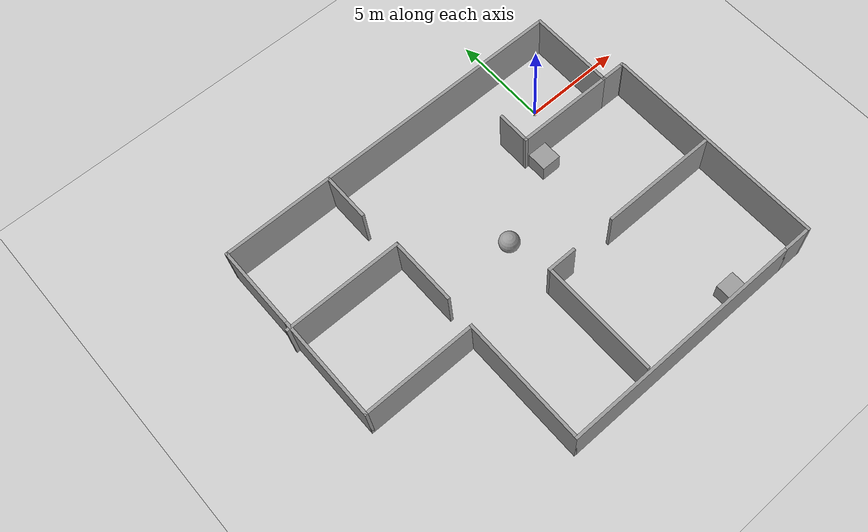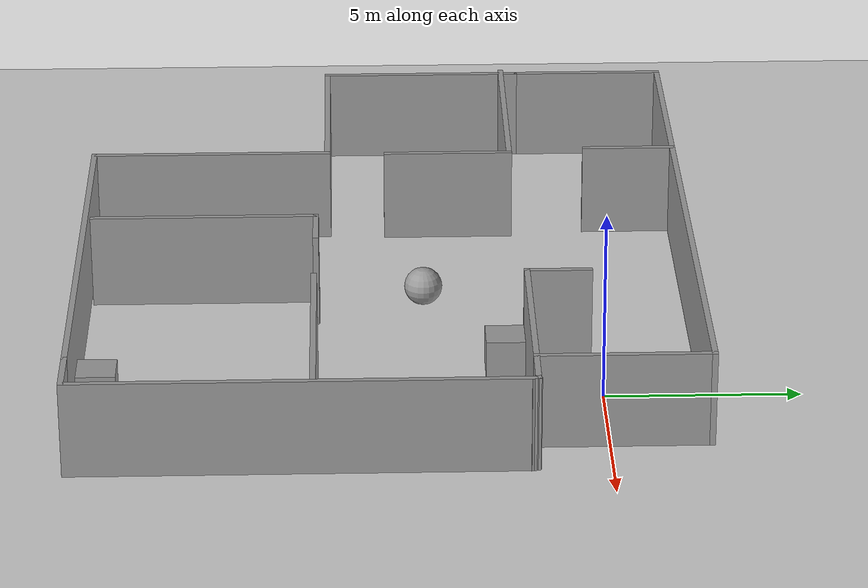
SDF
<sdf version="1.7">
 <world name="default">
  <light name="sun" type="directional">
   <pose>0 0 10 0 -0 0</pose>
   <diffuse>0.8 0.8 0.8 1</diffuse>
   <specular>0.2 0.2 0.2 1</specular>
   <attenuation>
    <range>1000</range>
    <constant>0.9</constant>
    <linear>0.01</linear>
    <quadratic>0.001</quadratic>
   </attenuation>
   <direction>-0.5 0.1 -0.9</direction>
   <spot><inner_angle>0</inner_angle><outer_angle>0</outer_angle><falloff>0</falloff></spot>
  </light>
  <model name="ground_plane">
   <static>1</static>
   <link name="link">
    <collision name="collision">
     <geometry><plane><normal>0 0 1</normal><size>100 100</size></plane></geometry>
     <surface><friction><ode><mu>100</mu><mu2>50</mu2></ode></friction></surface>
    </collision>
    <visual name="visual">
     <cast_shadows>0</cast_shadows>
     <geometry><plane><normal>0 0 1</normal><size>100 100</size></plane></geometry>
     <material>
      <script><uri>file://media/materials/scripts/gazebo.material</uri><name>Gazebo/Grey</name></script>
     </material>
    </visual>
   </link>
  </model>
  <gravity>0 0 -9.8</gravity>
  <magnetic_field>6e-06 2.3e-05 -4.2e-05</magnetic_field>
  <atmosphere type="adiabatic"/>
  <physics type="ode">
   <max_step_size>0.001</max_step_size>
   <real_time_factor>1</real_time_factor>
   <real_time_update_rate>1000</real_time_update_rate>
  </physics>
  <scene><ambient>0.4 0.4 0.4 1</ambient><background>0.7 0.7 0.7 1</background><shadows>1</shadows></scene>
  <audio><device>default</device></audio>
  <spherical_coordinates>
   <surface_model>EARTH_WGS84</surface_model>
   <latitude_deg>0</latitude_deg>
   <longitude_deg>0</longitude_deg>
   <elevation>0</elevation>
   <heading_deg>0</heading_deg>
  </spherical_coordinates>
  <model name="room">
   <pose>-5.93375 -5.39 0 0 -0 0</pose>
   <link name="Wall_0">
    <collision name="Wall_0_Collision">
     <geometry><box><size>4.5 0.15 2.5</size></box></geometry>
     <pose>0 0 1.25 0 -0 0</pose>
    </collision>
    <visual name="Wall_0_Visual">
     <pose>0 0 1.25 0 -0 0</pose>
     <geometry><box><size>4.5 0.15 2.5</size></box></geometry>
     <material>
      <script><uri>file://media/materials/scripts/gazebo.material</uri><name>Gazebo/Grey</name></script>
      <ambient>1 1 1 1</ambient>
     </material>
     <meta><layer>0</layer></meta>
    </visual>
    <pose>8.52375 5.725 0 0 -0 1.5708</pose>
   </link>
   <link name="Wall_1">
    <collision name="Wall_1_Collision">
     <geometry><box><size>18.25 0.15 2.5</size></box></geometry>
     <pose>0 0 1.25 0 -0 0</pose>
    </collision>
    <visual name="Wall_1_Visual">
     <pose>0 0 1.25 0 -0 0</pose>
     <geometry><box><size>18.25 0.15 2.5</size></box></geometry>
     <material>
      <script><uri>file://media/materials/scripts/gazebo.material</uri><name>Gazebo/Grey</name></script>
      <ambient>1 1 1 1</ambient>
     </material>
     <meta><layer>0</layer></meta>
    </visual>
    <pose>-0.526248 7.9 0 0 -0 3.14159</pose>
   </link>
   <link name="Wall_10">
    <collision name="Wall_10_Collision">
     <geometry><box><size>0.25 0.15 2.5</size></box></geometry>
     <pose>0 0 1.25 0 -0 0</pose>
    </collision>
    <visual name="Wall_10_Visual">
     <pose>0 0 1.25 0 -0 0</pose>
     <geometry><box><size>0.25 0.15 2.5</size></box></geometry>
     <material>
      <script><uri>file://media/materials/scripts/gazebo.material</uri><name>Gazebo/Grey</name></script>
      <ambient>1 1 1 1</ambient>
     </material>
     <meta><layer>0</layer></meta>
    </visual>
    <pose>9.71081 3.4983 0 0 -0 1.8326</pose>
   </link>
   <link name="Wall_11">
    <collision name="Wall_11_Collision">
     <geometry><box><size>1.32412 0.15 2.5</size></box></geometry>
     <pose>0 0 1.25 0 -0 0</pose>
    </collision>
    <visual name="Wall_11_Visual">
     <pose>0 0 1.25 0 -0 0</pose>
     <geometry><box><size>1.32412 0.15 2.5</size></box></geometry>
     <material>
      <script><uri>file://media/materials/scripts/gazebo.material</uri><name>Gazebo/Grey</name></script>
      <ambient>1 1 1 1</ambient>
     </material>
     <meta><layer>0</layer></meta>
    </visual>
    <pose>9.11081 3.5483 0 0 -0 3.13869</pose>
   </link>
   <link name="Wall_13">
    <collision name="Wall_13_Collision">
     <geometry><box><size>5 0.15 2.5</size></box></geometry>
     <pose>0 0 1.25 0 -0 0</pose>
    </collision>
    <visual name="Wall_13_Visual">
     <pose>0 0 1.25 0 -0 0</pose>
     <geometry><box><size>5 0.15 2.5</size></box></geometry>
     <material>
      <script><uri>file://media/materials/scripts/gazebo.material</uri><name>Gazebo/Grey</name></script>
      <ambient>1 1 1 1</ambient>
     </material>
     <meta><layer>0</layer></meta>
    </visual>
    <pose>6.09875 3.55 0 0 -0 3.14159</pose>
   </link>
   <link name="Wall_14">
    <collision name="Wall_14_Collision">
     <geometry><box><size>1.75 0.15 2.5</size></box></geometry>
     <pose>0 0 1.25 0 -0 0</pose>
    </collision>
    <visual name="Wall_14_Visual">
     <pose>0 0 1.25 0 -0 0</pose>
     <geometry><box><size>1.75 0.15 2.5</size></box></geometry>
     <material>
      <script><uri>file://media/materials/scripts/gazebo.material</uri><name>Gazebo/Grey</name></script>
      <ambient>1 1 1 1</ambient>
     </material>
     <meta><layer>0</layer></meta>
    </visual>
    <pose>3.67375 4.35 0 0 -0 1.5708</pose>
   </link>
   <link name="Wall_16">
    <collision name="Wall_16_Collision">
     <geometry><box><size>6 0.15 2.5</size></box></geometry>
     <pose>0 0 1.25 0 -0 0</pose>
    </collision>
    <visual name="Wall_16_Visual">
     <pose>0 0 1.25 0 -0 0</pose>
     <geometry><box><size>6 0.15 2.5</size></box></geometry>
     <material>
      <script><uri>file://media/materials/scripts/gazebo.material</uri><name>Gazebo/Grey</name></script>
      <ambient>1 1 1 1</ambient>
     </material>
     <meta><layer>0</layer></meta>
    </visual>
    <pose>-6.81561 3.41448 0 0 -0 0</pose>
   </link>
   <link name="Wall_17">
    <collision name="Wall_17_Collision">
     <geometry><box><size>3.5 0.15 2.5</size></box></geometry>
     <pose>0 0 1.25 0 -0 0</pose>
    </collision>
    <visual name="Wall_17_Visual">
     <pose>0 0 1.25 0 -0 0</pose>
     <geometry><box><size>3.5 0.15 2.5</size></box></geometry>
     <material>
      <script><uri>file://media/materials/scripts/gazebo.material</uri><name>Gazebo/Grey</name></script>
      <ambient>1 1 1 1</ambient>
     </material>
     <meta><layer>0</layer></meta>
    </visual>
    <pose>-3.89061 1.73948 0 0 -0 -1.5708</pose>
   </link>
   <link name="Wall_19">
    <collision name="Wall_19_Collision">
     <geometry><box><size>2.5 0.15 2.5</size></box></geometry>
     <pose>0 0 1.25 0 -0 0</pose>
    </collision>
    <visual name="Wall_19_Visual">
     <pose>0 0 1.25 0 -0 0</pose>
     <geometry><box><size>2.5 0.15 2.5</size></box></geometry>
     <material>
      <script><uri>file://media/materials/scripts/gazebo.material</uri><name>Gazebo/Grey</name></script>
      <ambient>1 1 1 1</ambient>
     </material>
     <meta><layer>0</layer></meta>
    </visual>
    <pose>-4.11728 6.68959 0 0 -0 -1.5708</pose>
   </link>
   <link name="Wall_2">
    <collision name="Wall_2_Collision">
     <geometry><box><size>4.25 0.15 2.5</size></box></geometry>
     <pose>0 0 1.25 0 -0 0</pose>
    </collision>
    <visual name="Wall_2_Visual">
     <pose>0 0 1.25 0 -0 0</pose>
     <geometry><box><size>4.25 0.15 2.5</size></box></geometry>
     <material>
      <script><uri>file://media/materials/scripts/gazebo.material</uri><name>Gazebo/Grey</name></script>
      <ambient>1 1 1 1</ambient>
     </material>
     <meta><layer>0</layer></meta>
    </visual>
    <pose>-9.57625 5.85 0 0 -0 -1.5708</pose>
   </link>
   <link name="Wall_22">
    <collision name="Wall_22_Collision">
     <geometry><box><size>6 0.15 2.5</size></box></geometry>
     <pose>0 0 1.25 0 -0 0</pose>
    </collision>
    <visual name="Wall_22_Visual">
     <pose>0 0 1.25 0 -0 0</pose>
     <geometry><box><size>6 0.15 2.5</size></box></geometry>
     <material>
      <script><uri>file://media/materials/scripts/gazebo.material</uri><name>Gazebo/Grey</name></script>
      <ambient>1 1 1 1</ambient>
     </material>
     <meta><layer>0</layer></meta>
    </visual>
    <pose>0.166247 -4.76975 0 0 -0 -1.5708</pose>
   </link>
   <link name="Wall_24">
    <collision name="Wall_24_Collision">
     <geometry><box><size>1.5 0.15 2.5</size></box></geometry>
     <pose>0 0 1.25 0 -0 0</pose>
    </collision>
    <visual name="Wall_24_Visual">
     <pose>0 0 1.25 0 -0 0</pose>
     <geometry><box><size>1.5 0.15 2.5</size></box></geometry>
     <material>
      <script><uri>file://media/materials/scripts/gazebo.material</uri><name>Gazebo/Grey</name></script>
      <ambient>1 1 1 1</ambient>
     </material>
     <meta><layer>0</layer></meta>
    </visual>
    <pose>0.841247 -1.84475 0 0 -0 0</pose>
   </link>
   <link name="Wall_27">
    <collision name="Wall_27_Collision">
     <geometry><box><size>6 0.15 2.5</size></box></geometry>
     <pose>0 0 1.25 0 -0 0</pose>
    </collision>
    <visual name="Wall_27_Visual">
     <pose>0 0 1.25 0 -0 0</pose>
     <geometry><box><size>6 0.15 2.5</size></box></geometry>
     <material>
      <script><uri>file://media/materials/scripts/gazebo.material</uri><name>Gazebo/Grey</name></script>
      <ambient>1 1 1 1</ambient>
     </material>
     <meta><layer>0</layer></meta>
    </visual>
    <pose>6.7228 -1.87766 0 0 -0 3.14159</pose>
   </link>
   <link name="Wall_4">
    <collision name="Wall_4_Collision">
     <geometry><box><size>5.5 0.15 2.5</size></box></geometry>
     <pose>0 0 1.25 0 -0 0</pose>
    </collision>
    <visual name="Wall_4_Visual">
     <pose>0 0 1.25 0 -0 0</pose>
     <geometry><box><size>5.5 0.15 2.5</size></box></geometry>
     <material>
      <script><uri>file://media/materials/scripts/gazebo.material</uri><name>Gazebo/Grey</name></script>
      <ambient>1 1 1 1</ambient>
     </material>
     <meta><layer>0</layer></meta>
    </visual>
    <pose>-9.57625 1.125 0 0 -0 -1.5708</pose>
   </link>
   <link name="Wall_5">
    <collision name="Wall_5_Collision">
     <geometry><box><size>5.75 0.15 2.5</size></box></geometry>
     <pose>0 0 1.25 0 -0 0</pose>
    </collision>
    <visual name="Wall_5_Visual">
     <pose>0 0 1.25 0 -0 0</pose>
     <geometry><box><size>5.75 0.15 2.5</size></box></geometry>
     <material>
      <script><uri>file://media/materials/scripts/gazebo.material</uri><name>Gazebo/Grey</name></script>
      <ambient>1 1 1 1</ambient>
     </material>
     <meta><layer>0</layer></meta>
    </visual>
    <pose>-6.77625 -1.55 0 0 -0 0</pose>
   </link>
   <link name="Wall_6">
    <collision name="Wall_6_Collision">
     <geometry><box><size>6.5 0.15 2.5</size></box></geometry>
     <pose>0 0 1.25 0 -0 0</pose>
    </collision>
    <visual name="Wall_6_Visual">
     <pose>0 0 1.25 0 -0 0</pose>
     <geometry><box><size>6.5 0.15 2.5</size></box></geometry>
     <material>
      <script><uri>file://media/materials/scripts/gazebo.material</uri><name>Gazebo/Grey</name></script>
      <ambient>1 1 1 1</ambient>
     </material>
     <meta><layer>0</layer></meta>
    </visual>
    <pose>-3.97625 -4.725 0 0 -0 -1.5708</pose>
   </link>
   <link name="Wall_7">
    <collision name="Wall_7_Collision">
     <geometry><box><size>12.5 0.15 2.5</size></box></geometry>
     <pose>0 0 1.25 0 -0 0</pose>
    </collision>
    <visual name="Wall_7_Visual">
     <pose>0 0 1.25 0 -0 0</pose>
     <geometry><box><size>12.5 0.15 2.5</size></box></geometry>
     <material>
      <script><uri>file://media/materials/scripts/gazebo.material</uri><name>Gazebo/Grey</name></script>
      <ambient>1 1 1 1</ambient>
     </material>
     <meta><layer>0</layer></meta>
    </visual>
    <pose>2.19875 -7.9 0 0 -0 0</pose>
   </link>
   <link name="Wall_8">
    <collision name="Wall_8_Collision">
     <geometry><box><size>1.5 0.15 2.5</size></box></geometry>
     <pose>0 0 1.25 0 -0 0</pose>
    </collision>
    <visual name="Wall_8_Visual">
     <pose>0 0 1.25 0 -0 0</pose>
     <geometry><box><size>1.5 0.15 2.5</size></box></geometry>
     <material>
      <script><uri>file://media/materials/scripts/gazebo.material</uri><name>Gazebo/Grey</name></script>
      <ambient>1 1 1 1</ambient>
     </material>
     <meta><layer>0</layer></meta>
    </visual>
    <pose>9.04875 -7.9 0 0 -0 0</pose>
   </link>
   <link name="Wall_9">
    <collision name="Wall_9_Collision">
     <geometry><box><size>11.5 0.15 2.5</size></box></geometry>
     <pose>0 0 1.25 0 -0 0</pose>
    </collision>
    <visual name="Wall_9_Visual">
     <pose>0 0 1.25 0 -0 0</pose>
     <geometry><box><size>11.5 0.15 2.5</size></box></geometry>
     <material>
      <script><uri>file://media/materials/scripts/gazebo.material</uri><name>Gazebo/Grey</name></script>
      <ambient>1 1 1 1</ambient>
     </material>
     <meta><layer>0</layer></meta>
    </visual>
    <pose>9.72375 -2.225 0 0 -0 1.5708</pose>
   </link>
   <static>1</static>
  </model>
  <model name="fishbot">
   <link name="base_footprint">
    <inertial>
     <pose>0.000926 0 0.095565 0 -0 0</pose>
     <mass>1.08</mass>
     <inertia>
      <ixx>0.00465223</ixx>
      <ixy>0</ixy>
      <ixz>-7.04352e-05</ixz>
      <iyy>0.0048713</iyy>
      <iyz>0</iyz>
      <izz>0.00524496</izz>
     </inertia>
    </inertial>
    <collision name="base_footprint_fixed_joint_lump__base_link_collision">
     <pose>0 0 0.091 0 -0 0</pose>
     <geometry><cylinder><length>0.12</length><radius>0.12</radius></cylinder></geometry>
    </collision>
    <collision name="base_footprint_fixed_joint_lump__back_caster_link_collision_1">
     <pose>-0.08 0 0.015 0 -0 0</pose>
     <geometry><sphere><radius>0.016</radius></sphere></geometry>
     <surface>
      <contact><ode><kp>1e+09</kp><kd>1</kd></ode></contact>
      <friction><ode><mu>0</mu><mu2>0</mu2></ode></friction>
     </surface>
    </collision>
    <collision name="base_footprint_fixed_joint_lump__camera_link_collision_2">
     <pose>0.1 0 0.166 0 -0 0</pose>
     <geometry><box><size>0.02 0.1 0.02</size></box></geometry>
    </collision>
    <collision name="base_footprint_fixed_joint_lump__front_caster_link_collision_3">
     <pose>0.08 0 0.015 0 -0 0</pose>
     <geometry><sphere><radius>0.016</radius></sphere></geometry>
     <surface>
      <contact><ode><kp>1e+09</kp><kd>1</kd></ode></contact>
      <friction><ode><mu>0</mu><mu2>0</mu2></ode></friction>
     </surface>
    </collision>
    <collision name="base_footprint_fixed_joint_lump__imu_link_collision_4">
     <pose>0 0 0.111 0 -0 0</pose>
     <geometry><box><size>0.02 0.02 0.02</size></box></geometry>
    </collision>
    <collision name="base_footprint_fixed_joint_lump__laser_cylinder_link_collision_5">
     <pose>0 0 0.191 0 -0 0</pose>
     <geometry><cylinder><length>0.1</length><radius>0.01</radius></cylinder></geometry>
    </collision>
    <collision name="base_footprint_fixed_joint_lump__laser_link_collision_6">
     <pose>0 0 0.241 0 -0 0</pose>
     <geometry><cylinder><length>0.02</length><radius>0.02</radius></cylinder></geometry>
    </collision>
    <visual name="base_footprint_fixed_joint_lump__base_link_visual">
     <pose>0 0 0.091 0 -0 0</pose>
     <geometry><cylinder><length>0.12</length><radius>0.12</radius></cylinder></geometry>
    </visual>
    <visual name="base_footprint_fixed_joint_lump__back_caster_link_visual_1">
     <pose>-0.08 0 0.015 0 -0 0</pose>
     <geometry><sphere><radius>0.016</radius></sphere></geometry>
    </visual>
    <visual name="base_footprint_fixed_joint_lump__camera_link_visual_2">
     <pose>0.1 0 0.166 0 -0 0</pose>
     <geometry><box><size>0.02 0.1 0.02</size></box></geometry>
    </visual>
    <visual name="base_footprint_fixed_joint_lump__front_caster_link_visual_3">
     <pose>0.08 0 0.015 0 -0 0</pose>
     <geometry><sphere><radius>0.016</radius></sphere></geometry>
    </visual>
    <visual name="base_footprint_fixed_joint_lump__imu_link_visual_4">
     <pose>0 0 0.111 0 -0 0</pose>
     <geometry><box><size>0.02 0.02 0.02</size></box></geometry>
    </visual>
    <visual name="base_footprint_fixed_joint_lump__laser_cylinder_link_visual_5">
     <pose>0 0 0.191 0 -0 0</pose>
     <geometry><cylinder><length>0.1</length><radius>0.01</radius></cylinder></geometry>
    </visual>
    <visual name="base_footprint_fixed_joint_lump__laser_link_visual_6">
     <pose>0 0 0.241 0 -0 0</pose>
     <geometry><cylinder><length>0.02</length><radius>0.02</radius></cylinder></geometry>
    </visual>
    <sensor name="camera_sensor" type="depth">
     <plugin name="depth_camera" filename="libgazebo_ros_camera.so">
      <frame_name>camera_optical_link</frame_name>
     </plugin>
     <always_on>1</always_on>
     <update_rate>10</update_rate>
     <camera name="camera">
      <horizontal_fov>1.50098</horizontal_fov>
      <image><width>800</width><height>600</height><format>R8G8B8</format></image>
      <distortion><k1>0</k1><k2>0</k2><k3>0</k3><p1>0</p1><p2>0</p2><center>0.5 0.5</center></distortion>
      <clip><near>0.1</near><far>100</far></clip>
     </camera>
     <pose>0.1 0 0.166 0 -0 0</pose>
    </sensor>
    <sensor name="imu_sensor" type="imu">
     <plugin name="imu_plugin" filename="libgazebo_ros_imu_sensor.so">
      <ros><namespace>/</namespace><remapping>~/out:=imu</remapping></ros>
      <initial_orientation_as_reference>0</initial_orientation_as_reference>
     </plugin>
     <update_rate>100</update_rate>
     <always_on>1</always_on>
     <imu>
      <angular_velocity>
       <x>
        <noise type="gaussian">
         <mean>0</mean>
         <stddev>0.0002</stddev>
         <bias_mean>7.5e-06</bias_mean>
         <bias_stddev>8e-07</bias_stddev>
        </noise>
       </x>
       <y>
        <noise type="gaussian">
         <mean>0</mean>
         <stddev>0.0002</stddev>
         <bias_mean>7.5e-06</bias_mean>
         <bias_stddev>8e-07</bias_stddev>
        </noise>
       </y>
       <z>
        <noise type="gaussian">
         <mean>0</mean>
         <stddev>0.0002</stddev>
         <bias_mean>7.5e-06</bias_mean>
         <bias_stddev>8e-07</bias_stddev>
        </noise>
       </z>
      </angular_velocity>
      <linear_acceleration>
       <x>
        <noise type="gaussian">
         <mean>0</mean>
         <stddev>0.017</stddev>
         <bias_mean>0.1</bias_mean>
         <bias_stddev>0.001</bias_stddev>
        </noise>
       </x>
       <y>
        <noise type="gaussian">
         <mean>0</mean>
         <stddev>0.017</stddev>
         <bias_mean>0.1</bias_mean>
         <bias_stddev>0.001</bias_stddev>
        </noise>
       </y>
       <z>
        <noise type="gaussian">
         <mean>0</mean>
         <stddev>0.017</stddev>
         <bias_mean>0.1</bias_mean>
         <bias_stddev>0.001</bias_stddev>
        </noise>
       </z>
      </linear_acceleration>
     </imu>
     <pose>0 0 0.111 0 -0 0</pose>
    </sensor>
    <sensor name="laserscan" type="ray">
     <plugin name="laserscan" filename="libgazebo_ros_ray_sensor.so">
      <ros><namespace>/</namespace><remapping>~/out:=scan</remapping></ros>
      <output_type>sensor_msgs/LaserScan</output_type>
      <frame_name>laser_link</frame_name>
     </plugin>
     <always_on>1</always_on>
     <visualize>1</visualize>
     <update_rate>5</update_rate>
     <ray>
      <scan>
       <horizontal>
        <samples>360</samples>
        <resolution>1</resolution>
        <min_angle>0</min_angle>
        <max_angle>6.28</max_angle>
       </horizontal>
       <vertical><samples>1</samples><min_angle>0</min_angle><max_angle>0</max_angle></vertical>
      </scan>
      <range><min>0.12</min><max>8</max><resolution>0.015</resolution></range>
      <noise><type>gaussian</type><mean>0</mean><stddev>0.01</stddev></noise>
     </ray>
     <pose>0 0 0.241 0 -0 0</pose>
    </sensor>
   </link>
   <joint name="left_wheel_joint" type="revolute">
    <pose relative_to="base_footprint">0 0.1 0.031 0 -0 0</pose>
    <parent>base_footprint</parent>
    <child>left_wheel_link</child>
    <axis>
     <xyz>0 1 0</xyz>
     <limit><lower>-1e+16</lower><upper>1e+16</upper></limit>
     <dynamics><spring_reference>0</spring_reference><spring_stiffness>0</spring_stiffness></dynamics>
    </axis>
   </joint>
   <link name="left_wheel_link">
    <pose relative_to="left_wheel_joint">0 0 0 0 -0 0</pose>
    <inertial>
     <mass>0.1</mass>
     <inertia>
      <ixx>3.89333e-05</ixx>
      <ixy>0</ixy>
      <ixz>0</ixz>
      <iyy>3.89333e-05</iyy>
      <iyz>0</iyz>
      <izz>5.12e-05</izz>
     </inertia>
    </inertial>
    <collision name="left_wheel_link_collision">
     <pose>0 0 0 1.57079 -0 0</pose>
     <geometry><cylinder><length>0.04</length><radius>0.032</radius></cylinder></geometry>
     <surface>
      <contact><ode><kp>1e+09</kp><kd>1</kd></ode></contact>
      <friction><ode><mu>20</mu><mu2>20</mu2></ode></friction>
     </surface>
    </collision>
    <visual name="left_wheel_link_visual">
     <pose>0 0 0 1.57079 -0 0</pose>
     <geometry><cylinder><length>0.04</length><radius>0.032</radius></cylinder></geometry>
     <material>
      <script><name>Gazebo/Black</name><uri>file://media/materials/scripts/gazebo.material</uri></script>
     </material>
    </visual>
   </link>
   <joint name="right_wheel_joint" type="revolute">
    <pose relative_to="base_footprint">0 -0.1 0.031 0 -0 0</pose>
    <parent>base_footprint</parent>
    <child>right_wheel_link</child>
    <axis>
     <xyz>0 1 0</xyz>
     <limit><lower>-1e+16</lower><upper>1e+16</upper></limit>
     <dynamics><spring_reference>0</spring_reference><spring_stiffness>0</spring_stiffness></dynamics>
    </axis>
   </joint>
   <link name="right_wheel_link">
    <pose relative_to="right_wheel_joint">0 0 0 0 -0 0</pose>
    <inertial>
     <mass>0.1</mass>
     <inertia>
      <ixx>3.89333e-05</ixx>
      <ixy>0</ixy>
      <ixz>0</ixz>
      <iyy>3.89333e-05</iyy>
      <iyz>0</iyz>
      <izz>5.12e-05</izz>
     </inertia>
    </inertial>
    <collision name="right_wheel_link_collision">
     <pose>0 0 0 1.57079 -0 0</pose>
     <geometry><cylinder><length>0.04</length><radius>0.032</radius></cylinder></geometry>
     <surface>
      <contact><ode><kp>1e+09</kp><kd>1</kd></ode></contact>
      <friction><ode><mu>20</mu><mu2>20</mu2></ode></friction>
     </surface>
    </collision>
    <visual name="right_wheel_link_visual">
     <pose>0 0 0 1.57079 -0 0</pose>
     <geometry><cylinder><length>0.04</length><radius>0.032</radius></cylinder></geometry>
     <material>
      <script><name>Gazebo/Black</name><uri>file://media/materials/scripts/gazebo.material</uri></script>
     </material>
    </visual>
   </link>
   <static>0</static>
   <plugin name="gazebo_ros2_control" filename="libgazebo_ros2_control.so">
    <parameters>/home/gerry/chapt7/install/fishbot_description/share/fishbot_description/config/fishbot_ros2_controller.yaml</parameters>
    <ros>
     <remapping>/fishbot_diff_drive_controller/cmd_vel_unstamped:=/cmd_vel</remapping>
     <remapping>/fishbot_diff_drive_controller/odom:=/odom</remapping>
    </ros>
   </plugin>
   <pose>0.000215 -0.002855 0.001 1e-06 -0 -0.000972</pose>
  </model>
  <model name="unit_box">
   <pose>0.033312 -12.715 0.499995 1e-05 -0 0</pose>
   <link name="link">
    <inertial>
     <mass>1</mass>
     <inertia>
      <ixx>0.166667</ixx>
      <ixy>0</ixy>
      <ixz>0</ixz>
      <iyy>0.166667</iyy>
      <iyz>0</iyz>
      <izz>0.166667</izz>
     </inertia>
    </inertial>
    <collision name="collision"><geometry><box><size>1 1 1</size></box></geometry></collision>
    <visual name="visual">
     <geometry><box><size>1 1 1</size></box></geometry>
     <material>
      <script><name>Gazebo/Grey</name><uri>file://media/materials/scripts/gazebo.material</uri></script>
     </material>
    </visual>
   </link>
  </model>
  <model name="unit_box_0">
   <pose>-1.61925 -2.415 0.5 0 0 -2e-06</pose>
   <link name="link">
    <inertial>
     <mass>1</mass>
     <inertia>
      <ixx>0.166667</ixx>
      <ixy>0</ixy>
      <ixz>0</ixz>
      <iyy>0.166667</iyy>
      <iyz>0</iyz>
      <izz>0.166667</izz>
     </inertia>
    </inertial>
    <collision name="collision"><geometry><box><size>1 1 1</size></box></geometry></collision>
    <visual name="visual">
     <geometry><box><size>1 1 1</size></box></geometry>
     <material>
      <script><name>Gazebo/Grey</name><uri>file://media/materials/scripts/gazebo.material</uri></script>
     </material>
    </visual>
   </link>
  </model>
  <model name="unit_sphere">
   <pose>-5.57563 -4.41775 0.5 0 -0 0</pose>
   <link name="link">
    <inertial>
     <mass>1</mass>
     <inertia><ixx>0.1</ixx><ixy>0</ixy><ixz>0</ixz><iyy>0.1</iyy><iyz>0</iyz><izz>0.1</izz></inertia>
    </inertial>
    <collision name="collision"><geometry><sphere><radius>0.5</radius></sphere></geometry></collision>
    <visual name="visual">
     <geometry><sphere><radius>0.5</radius></sphere></geometry>
     <material>
      <script><name>Gazebo/Grey</name><uri>file://media/materials/scripts/gazebo.material</uri></script>
     </material>
    </visual>
   </link>
  </model>
 </world>
</sdf>
